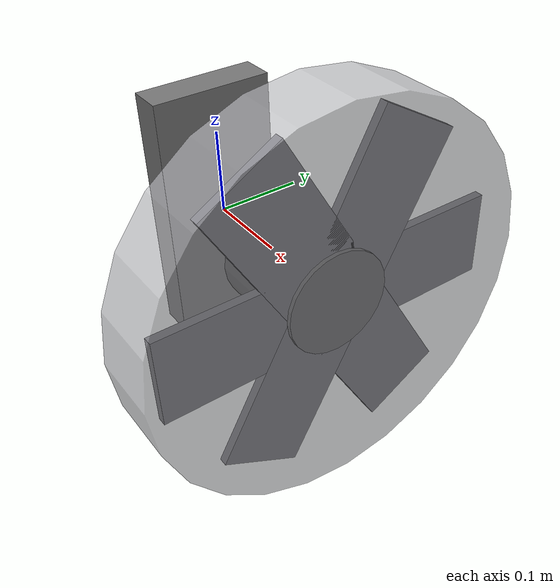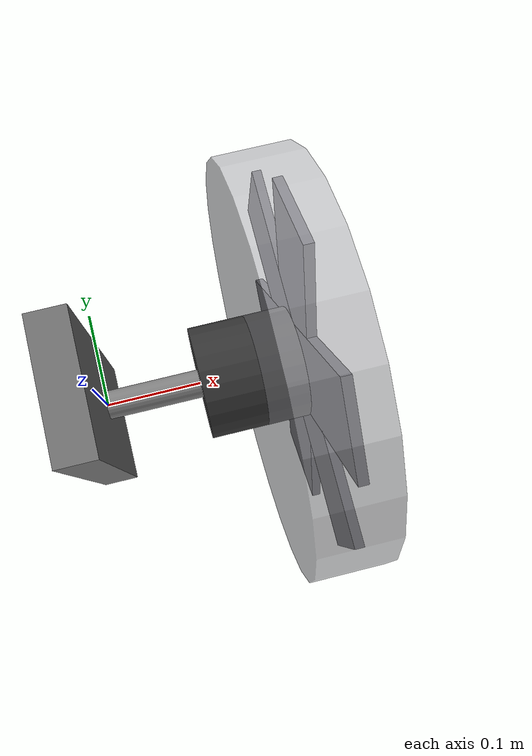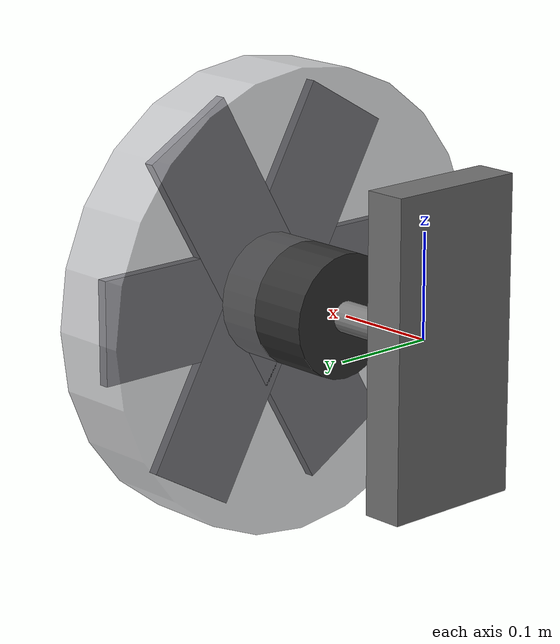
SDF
<?xml version="1.0"?>
<!-- Wall-mounted ventilation fan. Model +x points INTO the room (away from the wall). -->
<sdf version="1.7">
  <model name="wall_fan">
    <static>true</static>
    <link name="link">
      <!-- wall bracket plate -->
      <visual name="bracket">
        <pose>-0.02 0 0 0 0 0</pose>
        <geometry><box><size>0.04 0.14 0.30</size></box></geometry>
        <material><ambient>0.35 0.35 0.35 1</ambient><diffuse>0.45 0.45 0.45 1</diffuse></material>
      </visual>
      <!-- arm -->
      <visual name="arm">
        <pose>0.08 0 0 0 1.5708 0</pose>
        <geometry><cylinder><radius>0.015</radius><length>0.16</length></cylinder></geometry>
        <material><ambient>0.35 0.35 0.35 1</ambient><diffuse>0.5 0.5 0.5 1</diffuse></material>
      </visual>
      <!-- guard ring / cage -->
      <visual name="cage">
        <pose>0.20 0 0 0 1.5708 0</pose>
        <geometry><cylinder><radius>0.225</radius><length>0.08</length></cylinder></geometry>
        <transparency>0.35</transparency>
        <material><ambient>0.5 0.5 0.52 1</ambient><diffuse>0.7 0.7 0.72 1</diffuse><specular>0.6 0.6 0.6 1</specular></material>
      </visual>
      <!-- hub / motor -->
      <visual name="hub">
        <pose>0.16 0 0 0 1.5708 0</pose>
        <geometry><cylinder><radius>0.06</radius><length>0.12</length></cylinder></geometry>
        <material><ambient>0.15 0.15 0.15 1</ambient><diffuse>0.2 0.2 0.2 1</diffuse></material>
      </visual>
      <!-- three blades -->
      <visual name="blade_0">
        <pose>0.21 0 0 0 0 0</pose>
        <geometry><box><size>0.01 0.40 0.10</size></box></geometry>
        <material><ambient>0.2 0.2 0.22 1</ambient><diffuse>0.3 0.3 0.33 1</diffuse></material>
      </visual>
      <visual name="blade_1">
        <pose>0.21 0 0 1.0472 0 0</pose>
        <geometry><box><size>0.01 0.40 0.10</size></box></geometry>
        <material><ambient>0.2 0.2 0.22 1</ambient><diffuse>0.3 0.3 0.33 1</diffuse></material>
      </visual>
      <visual name="blade_2">
        <pose>0.21 0 0 2.0944 0 0</pose>
        <geometry><box><size>0.01 0.40 0.10</size></box></geometry>
        <material><ambient>0.2 0.2 0.22 1</ambient><diffuse>0.3 0.3 0.33 1</diffuse></material>
      </visual>
      <collision name="collision">
        <pose>0.12 0 0 0 0 0</pose>
        <geometry><box><size>0.26 0.46 0.46</size></box></geometry>
      </collision>
    </link>
  </model>
</sdf>
